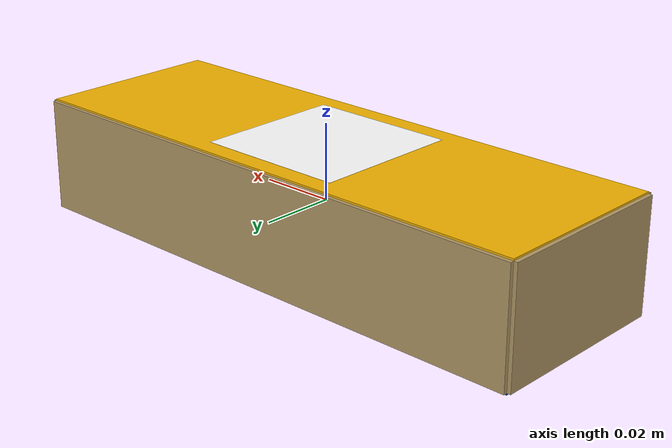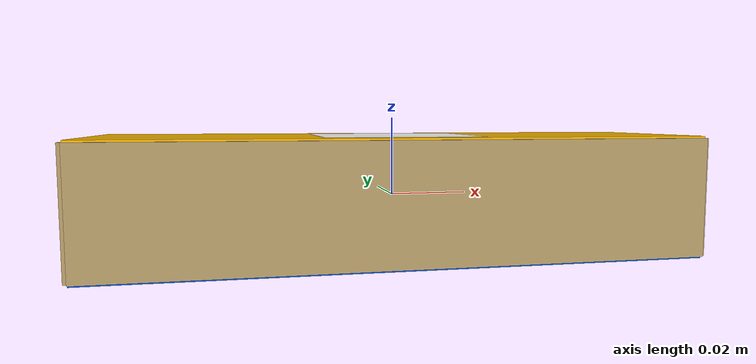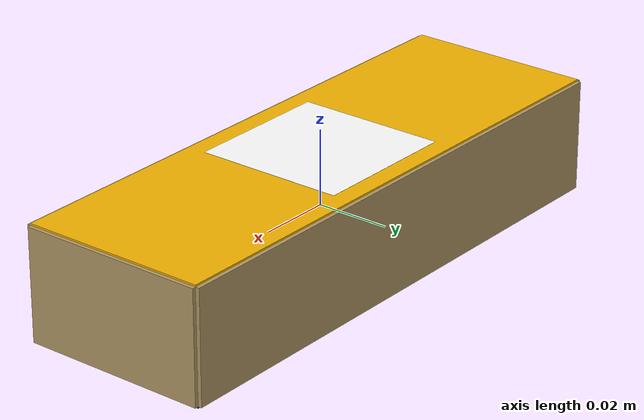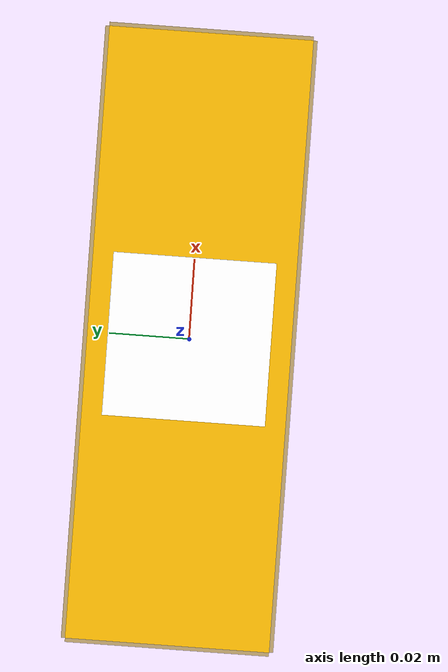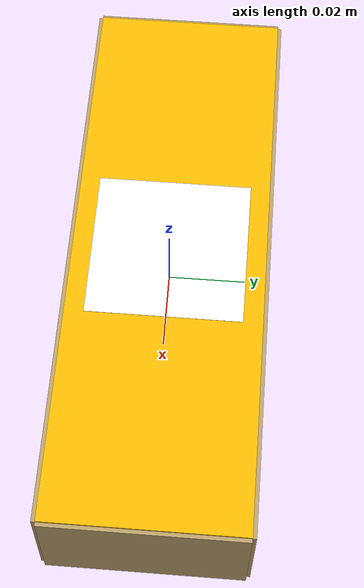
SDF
<?xml version="1.0" ?>
<sdf version="1.9">
  <model name="crate_yellow">
    <static>false</static>
    <link name="link">
      <inertial>
        <mass>0.17</mass>
        <inertia>
          <ixx>0.000047</ixx>
          <iyy>0.000336</iyy>
          <izz>0.000361</izz>
          <ixy>0</ixy>
          <ixz>0</ixz>
          <iyz>0</iyz>
        </inertia>
      </inertial>

      <!-- Single collision box for the entire crate -->
      <collision name="collision">
        <geometry>
          <box>
            <size>0.15 0.05 0.03</size>
          </box>
        </geometry>
        <surface>
          <friction>
            <ode>
              <mu>1.0</mu>
              <mu2>1.0</mu2>
            </ode>
          </friction>
          <bounce/>
          <contact/>
        </surface>
      </collision>

      <!-- TOP FACE: Yellow plastic base (NO texture here)              -->
      <visual name="visual_top_base">
        <pose>0 0 0.015 0 0 0</pose>
        <geometry>
          <box>
            <size>0.15 0.05 0.001</size>
          </box>
        </geometry>
        <material>
          <ambient>0.95 0.7 0.0 1</ambient>
          <diffuse>0.95 0.7 0.0 1</diffuse>
          <specular>0.2 0.2 0.2 1</specular>
        </material>
      </visual>

      <!-- ArUco marker ID 47 (40mm × 40mm) centered on TOP face -->
      <visual name="aruco_top">
        <pose>0 0 0.0155 0 0 0</pose>  <!-- 0.1mm above yellow surface -->
        <geometry>
          <box>
            <size>0.04 0.04 0.0001</size>  <!-- 40mm × 40mm × 0.1mm -->
          </box>
        </geometry>
        <material>
          <!-- WHITE material = no color tinting -->
          <ambient>1.0 1.0 1.0 1.0</ambient>
          <diffuse>1.0 1.0 1.0 1.0</diffuse>
          <specular>0.1 0.1 0.1 1.0</specular>
          <emissive>0.0 0.0 0.0 1.0</emissive>

          <pbr>
            <metal>
              <albedo_map>model://crate_yellow/materials/textures/aruco_yellow_47.png</albedo_map>
            </metal>
          </pbr>
        </material>
      </visual>

      <!-- BOTTOM FACE: Blue plastic base (NO texture here)             -->
      <visual name="visual_bottom_base">
        <pose>0 0 -0.015 0 0 0</pose>
        <geometry>
          <box>
            <size>0.15 0.05 0.001</size>
          </box>
        </geometry>
        <material>
          <ambient>0.0 0.3 0.8 1</ambient>
          <diffuse>0.0 0.3 0.8 1</diffuse>
          <specular>0.2 0.2 0.2 1</specular>
        </material>
      </visual>

      <!-- ArUco marker ID 36 (40mm × 40mm) centered on BOTTOM face -->
      <visual name="aruco_bottom">
        <pose>0 0 -0.0155 0 0 0</pose>  <!-- 0.1mm below blue surface -->
        <geometry>
          <box>
            <size>0.04 0.04 0.0001</size>  <!-- 40mm × 40mm × 0.1mm -->
          </box>
        </geometry>
        <material>
          <!-- WHITE material = no color tinting -->
          <ambient>1.0 1.0 1.0 1.0</ambient>
          <diffuse>1.0 1.0 1.0 1.0</diffuse>
          <specular>0.1 0.1 0.1 1.0</specular>
          <emissive>0.0 0.0 0.0 1.0</emissive>

          <pbr>
            <metal>
              <albedo_map>model://crate_yellow/materials/textures/aruco_blue_36.png</albedo_map>
            </metal>
          </pbr>
        </material>
      </visual>

      <!-- SIDE FACES: Natural wood (unchanged)                         -->

      <!-- FRONT FACE: Natural wood (no color) -->
      <visual name="visual_front">
        <pose>0 0.0255 0 1.5708 0 0</pose>
        <geometry>
          <box>
            <size>0.15 0.03 0.001</size>
          </box>
        </geometry>
        <material>
          <ambient>0.7 0.6 0.4 1</ambient>
          <diffuse>0.7 0.6 0.4 1</diffuse>
          <specular>0.1 0.1 0.1 1</specular>
        </material>
      </visual>

      <!-- BACK FACE: Natural wood (no color) -->
      <visual name="visual_back">
        <pose>0 -0.0255 0 1.5708 0 0</pose>
        <geometry>
          <box>
            <size>0.15 0.03 0.001</size>
          </box>
        </geometry>
        <material>
          <ambient>0.7 0.6 0.4 1</ambient>
          <diffuse>0.7 0.6 0.4 1</diffuse>
          <specular>0.1 0.1 0.1 1</specular>
        </material>
      </visual>

      <!-- RIGHT FACE: Natural wood (no color) -->
      <visual name="visual_right">
        <pose>0.0755 0 0 1.5708 0 1.5708</pose>
        <geometry>
          <box>
            <size>0.05 0.03 0.001</size>
          </box>
        </geometry>
        <material>
          <ambient>0.7 0.6 0.4 1</ambient>
          <diffuse>0.7 0.6 0.4 1</diffuse>
          <specular>0.1 0.1 0.1 1</specular>
        </material>
      </visual>

      <!-- LEFT FACE: Natural wood (no color) -->
      <visual name="visual_left">
        <pose>-0.0755 0 0 1.5708 0 1.5708</pose>
        <geometry>
          <box>
            <size>0.05 0.03 0.001</size>
          </box>
        </geometry>
        <material>
          <ambient>0.7 0.6 0.4 1</ambient>
          <diffuse>0.7 0.6 0.4 1</diffuse>
          <specular>0.1 0.1 0.1 1</specular>
        </material>
      </visual>

    </link>
  </model>
</sdf>
